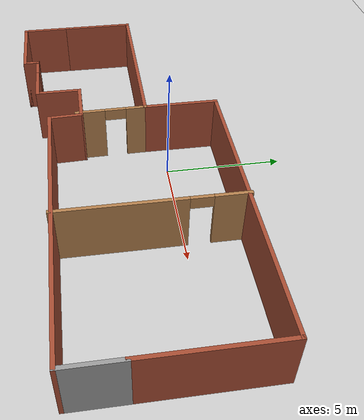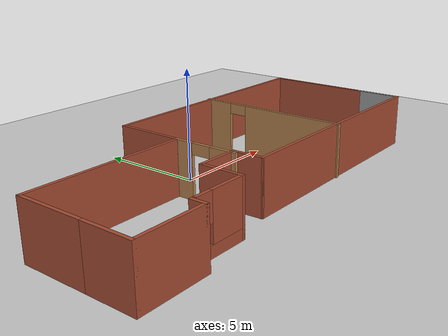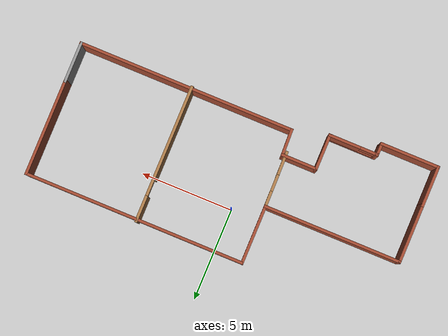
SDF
<sdf version="1.7">
 <world name="default">
  <light name="sun" type="directional">
   <pose>0 0 10 0 -0 0</pose>
   <diffuse>0.8 0.8 0.8 1</diffuse>
   <specular>0.2 0.2 0.2 1</specular>
   <attenuation>
    <range>1000</range>
    <constant>0.9</constant>
    <linear>0.01</linear>
    <quadratic>0.001</quadratic>
   </attenuation>
   <direction>-0.5 0.1 -0.9</direction>
   <spot><inner_angle>0</inner_angle><outer_angle>0</outer_angle><falloff>0</falloff></spot>
  </light>
  <model name="ground_plane">
   <static>1</static>
   <link name="link">
    <collision name="collision">
     <geometry><plane><normal>0 0 1</normal><size>100 100</size></plane></geometry>
     <surface><friction><ode><mu>100</mu><mu2>50</mu2></ode></friction></surface>
    </collision>
    <visual name="visual">
     <cast_shadows>0</cast_shadows>
     <geometry><plane><normal>0 0 1</normal><size>100 100</size></plane></geometry>
     <material>
      <script><uri>file://media/materials/scripts/gazebo.material</uri><name>Gazebo/Grey</name></script>
     </material>
    </visual>
   </link>
  </model>
  <gravity>0 0 -9.8</gravity>
  <magnetic_field>6e-06 2.3e-05 -4.2e-05</magnetic_field>
  <atmosphere type="adiabatic"/>
  <physics type="ode">
   <max_step_size>0.001</max_step_size>
   <real_time_factor>1</real_time_factor>
   <real_time_update_rate>1000</real_time_update_rate>
  </physics>
  <scene><ambient>0.4 0.4 0.4 1</ambient><background>0.7 0.7 0.7 1</background><shadows>1</shadows></scene>
  <audio><device>default</device></audio>
  <spherical_coordinates>
   <surface_model>EARTH_WGS84</surface_model>
   <latitude_deg>0</latitude_deg>
   <longitude_deg>0</longitude_deg>
   <elevation>0</elevation>
   <heading_deg>0</heading_deg>
  </spherical_coordinates>
  <model name="good.world">
   <pose>0.6947 -1.78806 0 0 -0 0</pose>
   <link name="Wall_0">
    <collision name="Wall_0_Collision">
     <geometry><box><size>2.25 0.15 2.5</size></box></geometry>
     <pose>0 0 1.25 0 -0 0</pose>
    </collision>
    <visual name="Wall_0_Visual">
     <pose>0 0 1.25 0 -0 0</pose>
     <geometry><box><size>2.25 0.15 2.5</size></box></geometry>
     <material>
      <script><uri>file://media/materials/scripts/gazebo.material</uri><name>Gazebo/Bricks</name></script>
      <ambient>1 1 1 1</ambient>
     </material>
     <meta><layer>0</layer></meta>
    </visual>
    <pose>-9.6 -3.13977 0 0 -0 -1.5708</pose>
   </link>
   <link name="Wall_1">
    <collision name="Wall_1_Collision">
     <geometry><box><size>3.25 0.15 2.5</size></box></geometry>
     <pose>0 0 1.25 0 -0 0</pose>
    </collision>
    <visual name="Wall_1_Visual">
     <pose>0 0 1.25 0 -0 0</pose>
     <geometry><box><size>3.25 0.15 2.5</size></box></geometry>
     <material>
      <script><uri>file://media/materials/scripts/gazebo.material</uri><name>Gazebo/Bricks</name></script>
      <ambient>1 1 1 1</ambient>
     </material>
     <meta><layer>0</layer></meta>
    </visual>
    <pose>-8.05 -4.18977 0 0 -0 0</pose>
   </link>
   <link name="Wall_10">
    <collision name="Wall_10_Collision">
     <geometry><box><size>12 0.15 2.5</size></box></geometry>
     <pose>0 0 1.25 0 -0 0</pose>
    </collision>
    <visual name="Wall_10_Visual">
     <pose>0 0 1.25 0 -0 0</pose>
     <geometry><box><size>12 0.15 2.5</size></box></geometry>
     <material>
      <script><uri>file://media/materials/scripts/gazebo.material</uri><name>Gazebo/Bricks</name></script>
      <ambient>1 1 1 1</ambient>
     </material>
     <meta><layer>0</layer></meta>
    </visual>
    <pose>3.675 4.11023 0 0 -0 0</pose>
   </link>
   <link name="Wall_11">
    <collision name="Wall_11_Collision">
     <geometry><box><size>5.25 0.15 2.5</size></box></geometry>
     <pose>0 0 1.25 0 -0 0</pose>
    </collision>
    <visual name="Wall_11_Visual">
     <pose>0 0 1.25 0 -0 0</pose>
     <geometry><box><size>5.25 0.15 2.5</size></box></geometry>
     <material>
      <script><uri>file://media/materials/scripts/gazebo.material</uri><name>Gazebo/Bricks</name></script>
      <ambient>1 1 1 1</ambient>
     </material>
     <meta><layer>0</layer></meta>
    </visual>
    <pose>9.6 1.56023 0 0 -0 -1.5708</pose>
   </link>
   <link name="Wall_12">
    <collision name="Wall_12_Collision">
     <geometry><box><size>2.25 0.15 2.5</size></box></geometry>
     <pose>0 0 1.25 0 -0 0</pose>
    </collision>
    <visual name="Wall_12_Visual">
     <pose>0 0 1.25 0 -0 0</pose>
     <geometry><box><size>2.25 0.15 2.5</size></box></geometry>
     <material>
      <script><uri>file://media/materials/scripts/gazebo.material</uri><name>Gazebo/Grey</name></script>
      <ambient>1 1 1 1</ambient>
     </material>
     <meta><layer>0</layer></meta>
    </visual>
    <pose>9.6 -2.03977 0 0 -0 -1.5708</pose>
   </link>
   <link name="Wall_13">
    <collision name="Wall_13_Collision">
     <geometry><box><size>11.75 0.15 2.5</size></box></geometry>
     <pose>0 0 1.25 0 -0 0</pose>
    </collision>
    <visual name="Wall_13_Visual">
     <pose>0 0 1.25 0 -0 0</pose>
     <geometry><box><size>11.75 0.15 2.5</size></box></geometry>
     <material>
      <script><uri>file://media/materials/scripts/gazebo.material</uri><name>Gazebo/Bricks</name></script>
      <ambient>1 1 1 1</ambient>
     </material>
     <meta><layer>0</layer></meta>
    </visual>
    <pose>3.8 -3.08977 0 0 -0 3.14159</pose>
   </link>
   <link name="Wall_14">
    <collision name="Wall_14_Collision">
     <geometry><box><size>1.50093 0.15 2.5</size></box></geometry>
     <pose>0 0 1.25 0 -0 0</pose>
    </collision>
    <visual name="Wall_14_Visual">
     <pose>0 0 1.25 0 -0 0</pose>
     <geometry><box><size>1.50093 0.15 2.5</size></box></geometry>
     <material>
      <script><uri>file://media/materials/scripts/gazebo.material</uri><name>Gazebo/Bricks</name></script>
      <ambient>1 1 1 1</ambient>
     </material>
     <meta><layer>0</layer></meta>
    </visual>
    <pose>-2.025 -2.41477 0 0 -0 1.60782</pose>
   </link>
   <link name="Wall_16">
    <pose>-2.2292 -0.460552 0 0 -0 -1.55665</pose>
    <visual name="Wall_16_Visual_0">
     <pose>-1.08979 0 1.25 0 -0 0</pose>
     <geometry><box><size>0.912981 0.15 2.5</size></box></geometry>
     <material>
      <script><uri>file://media/materials/scripts/gazebo.material</uri><name>Gazebo/Wood</name></script>
      <ambient>1 1 1 1</ambient>
     </material>
     <meta><layer>0</layer></meta>
    </visual>
    <collision name="Wall_16_Collision_0">
     <geometry><box><size>0.912981 0.15 2.5</size></box></geometry>
     <pose>-1.08979 0 1.25 0 -0 0</pose>
    </collision>
    <visual name="Wall_16_Visual_1">
     <pose>0.90649 0 1.25 0 -0 0</pose>
     <geometry><box><size>1.27958 0.15 2.5</size></box></geometry>
     <material>
      <script><uri>file://media/materials/scripts/gazebo.material</uri><name>Gazebo/Wood</name></script>
      <ambient>1 1 1 1</ambient>
     </material>
     <meta><layer>0</layer></meta>
    </visual>
    <collision name="Wall_16_Collision_1">
     <geometry><box><size>1.27958 0.15 2.5</size></box></geometry>
     <pose>0.90649 0 1.25 0 -0 0</pose>
    </collision>
    <visual name="Wall_16_Visual_2">
     <pose>-0.183302 0 2.25 0 -0 0</pose>
     <geometry><box><size>0.9 0.15 0.5</size></box></geometry>
     <material>
      <script><uri>file://media/materials/scripts/gazebo.material</uri><name>Gazebo/Wood</name></script>
      <ambient>1 1 1 1</ambient>
     </material>
     <meta><layer>0</layer></meta>
    </visual>
    <collision name="Wall_16_Collision_2">
     <geometry><box><size>0.9 0.15 0.5</size></box></geometry>
     <pose>-0.183302 0 2.25 0 -0 0</pose>
    </collision>
   </link>
   <link name="Wall_18">
    <pose>3.52575 0.51477 0 0 -0 -1.5708</pose>
    <visual name="Wall_18_Visual_0">
     <pose>-3.02285 0 1.25 0 -0 0</pose>
     <geometry><box><size>1.4543 0.15 2.5</size></box></geometry>
     <material>
      <script><uri>file://media/materials/scripts/gazebo.material</uri><name>Gazebo/Wood</name></script>
      <ambient>1 1 1 1</ambient>
     </material>
     <meta><layer>0</layer></meta>
    </visual>
    <collision name="Wall_18_Collision_0">
     <geometry><box><size>1.4543 0.15 2.5</size></box></geometry>
     <pose>-3.02285 0 1.25 0 -0 0</pose>
    </collision>
    <visual name="Wall_18_Visual_1">
     <pose>1.17715 0 1.25 0 -0 0</pose>
     <geometry><box><size>5.1457 0.15 2.5</size></box></geometry>
     <material>
      <script><uri>file://media/materials/scripts/gazebo.material</uri><name>Gazebo/Wood</name></script>
      <ambient>1 1 1 1</ambient>
     </material>
     <meta><layer>0</layer></meta>
    </visual>
    <collision name="Wall_18_Collision_1">
     <geometry><box><size>5.1457 0.15 2.5</size></box></geometry>
     <pose>1.17715 0 1.25 0 -0 0</pose>
    </collision>
    <visual name="Wall_18_Visual_2">
     <pose>-1.8457 0 2.25 0 -0 0</pose>
     <geometry><box><size>0.9 0.15 0.5</size></box></geometry>
     <material>
      <script><uri>file://media/materials/scripts/gazebo.material</uri><name>Gazebo/Wood</name></script>
      <ambient>1 1 1 1</ambient>
     </material>
     <meta><layer>0</layer></meta>
    </visual>
    <collision name="Wall_18_Collision_2">
     <geometry><box><size>0.9 0.15 0.5</size></box></geometry>
     <pose>-1.8457 0 2.25 0 -0 0</pose>
    </collision>
   </link>
   <link name="Wall_2">
    <collision name="Wall_2_Collision">
     <geometry><box><size>0.75 0.15 2.5</size></box></geometry>
     <pose>0 0 1.25 0 -0 0</pose>
    </collision>
    <visual name="Wall_2_Visual">
     <pose>0 0 1.25 0 -0 0</pose>
     <geometry><box><size>0.75 0.15 2.5</size></box></geometry>
     <material>
      <script><uri>file://media/materials/scripts/gazebo.material</uri><name>Gazebo/Bricks</name></script>
      <ambient>1 1 1 1</ambient>
     </material>
     <meta><layer>0</layer></meta>
    </visual>
    <pose>-6.5 -3.88977 0 0 -0 1.5708</pose>
   </link>
   <link name="Wall_3">
    <pose>-5.2 -3.58977 0 0 -0 0</pose>
    <visual name="Wall_3_Visual_0">
     <pose>-1.27376 0 1.25 0 -0 0</pose>
     <geometry><box><size>0.202481 0.15 2.5</size></box></geometry>
     <material>
      <script><uri>file://media/materials/scripts/gazebo.material</uri><name>Gazebo/Bricks</name></script>
      <ambient>1 1 1 1</ambient>
     </material>
     <meta><layer>0</layer></meta>
    </visual>
    <collision name="Wall_3_Collision_0">
     <geometry><box><size>0.202481 0.15 2.5</size></box></geometry>
     <pose>-1.27376 0 1.25 0 -0 0</pose>
    </collision>
    <visual name="Wall_3_Visual_1">
     <pose>0.101241 0 0.25 0 -0 0</pose>
     <geometry><box><size>2.54752 0.15 0.5</size></box></geometry>
     <material>
      <script><uri>file://media/materials/scripts/gazebo.material</uri><name>Gazebo/Bricks</name></script>
      <ambient>1 1 1 1</ambient>
     </material>
     <meta><layer>0</layer></meta>
    </visual>
    <collision name="Wall_3_Collision_1">
     <geometry><box><size>2.54752 0.15 0.5</size></box></geometry>
     <pose>0.101241 0 0.25 0 -0 0</pose>
    </collision>
    <visual name="Wall_3_Visual_2">
     <pose>0.501241 0 1.5 0 -0 0</pose>
     <geometry><box><size>1.74752 0.15 2</size></box></geometry>
     <material>
      <script><uri>file://media/materials/scripts/gazebo.material</uri><name>Gazebo/Bricks</name></script>
      <ambient>1 1 1 1</ambient>
     </material>
     <meta><layer>0</layer></meta>
    </visual>
    <collision name="Wall_3_Collision_2">
     <geometry><box><size>1.74752 0.15 2</size></box></geometry>
     <pose>0.501241 0 1.5 0 -0 0</pose>
    </collision>
    <visual name="Wall_3_Visual_3">
     <pose>-0.772519 0 1.9 0 -0 0</pose>
     <geometry><box><size>0.8 0.15 1.2</size></box></geometry>
     <material>
      <script><uri>file://media/materials/scripts/gazebo.material</uri><name>Gazebo/Bricks</name></script>
      <ambient>1 1 1 1</ambient>
     </material>
     <meta><layer>0</layer></meta>
    </visual>
    <collision name="Wall_3_Collision_3">
     <geometry><box><size>0.8 0.15 1.2</size></box></geometry>
     <pose>-0.772519 0 1.9 0 -0 0</pose>
    </collision>
   </link>
   <link name="Wall_4">
    <collision name="Wall_4_Collision">
     <geometry><box><size>2 0.15 2.5</size></box></geometry>
     <pose>0 0 1.25 0 -0 0</pose>
    </collision>
    <visual name="Wall_4_Visual">
     <pose>0 0 1.25 0 -0 0</pose>
     <geometry><box><size>2 0.15 2.5</size></box></geometry>
     <material>
      <script><uri>file://media/materials/scripts/gazebo.material</uri><name>Gazebo/Bricks</name></script>
      <ambient>1 1 1 1</ambient>
     </material>
     <meta><layer>0</layer></meta>
    </visual>
    <pose>-3.9 -2.66477 0 0 -0 1.5708</pose>
   </link>
   <link name="Wall_5">
    <collision name="Wall_5_Collision">
     <geometry><box><size>2 0.15 2.5</size></box></geometry>
     <pose>0 0 1.25 0 -0 0</pose>
    </collision>
    <visual name="Wall_5_Visual">
     <pose>0 0 1.25 0 -0 0</pose>
     <geometry><box><size>2 0.15 2.5</size></box></geometry>
     <material>
      <script><uri>file://media/materials/scripts/gazebo.material</uri><name>Gazebo/Bricks</name></script>
      <ambient>1 1 1 1</ambient>
     </material>
     <meta><layer>0</layer></meta>
    </visual>
    <pose>-2.975 -1.73977 0 0 -0 0</pose>
   </link>
   <link name="Wall_7">
    <collision name="Wall_7_Collision">
     <geometry><box><size>3.25 0.15 2.5</size></box></geometry>
     <pose>0 0 1.25 0 -0 0</pose>
    </collision>
    <visual name="Wall_7_Visual">
     <pose>0 0 1.25 0 -0 0</pose>
     <geometry><box><size>3.25 0.15 2.5</size></box></geometry>
     <material>
      <script><uri>file://media/materials/scripts/gazebo.material</uri><name>Gazebo/Bricks</name></script>
      <ambient>1 1 1 1</ambient>
     </material>
     <meta><layer>0</layer></meta>
    </visual>
    <pose>-9.6 -0.53977 0 0 -0 1.5708</pose>
   </link>
   <link name="Wall_8">
    <collision name="Wall_8_Collision">
     <geometry><box><size>7.5 0.15 2.5</size></box></geometry>
     <pose>0 0 1.25 0 -0 0</pose>
    </collision>
    <visual name="Wall_8_Visual">
     <pose>0 0 1.25 0 -0 0</pose>
     <geometry><box><size>7.5 0.15 2.5</size></box></geometry>
     <material>
      <script><uri>file://media/materials/scripts/gazebo.material</uri><name>Gazebo/Bricks</name></script>
      <ambient>1 1 1 1</ambient>
     </material>
     <meta><layer>0</layer></meta>
    </visual>
    <pose>-5.925 1.01023 0 0 -0 0</pose>
   </link>
   <link name="Wall_9">
    <collision name="Wall_9_Collision">
     <geometry><box><size>3.25 0.15 2.5</size></box></geometry>
     <pose>0 0 1.25 0 -0 0</pose>
    </collision>
    <visual name="Wall_9_Visual">
     <pose>0 0 1.25 0 -0 0</pose>
     <geometry><box><size>3.25 0.15 2.5</size></box></geometry>
     <material>
      <script><uri>file://media/materials/scripts/gazebo.material</uri><name>Gazebo/Bricks</name></script>
      <ambient>1 1 1 1</ambient>
     </material>
     <meta><layer>0</layer></meta>
    </visual>
    <pose>-2.25 2.56023 0 0 -0 1.5708</pose>
   </link>
   <static>1</static>
  </model>
 </world>
</sdf>
